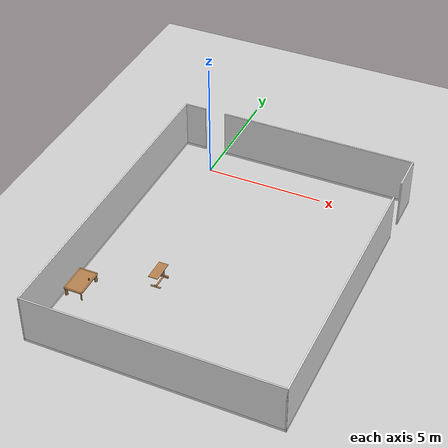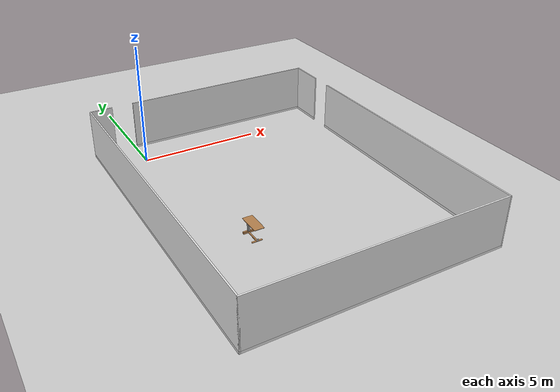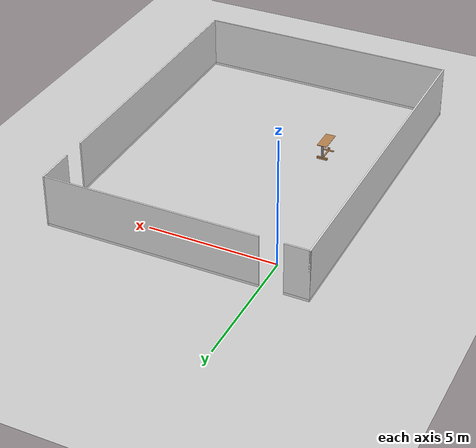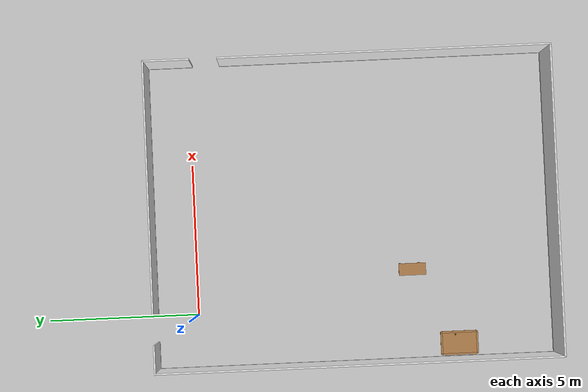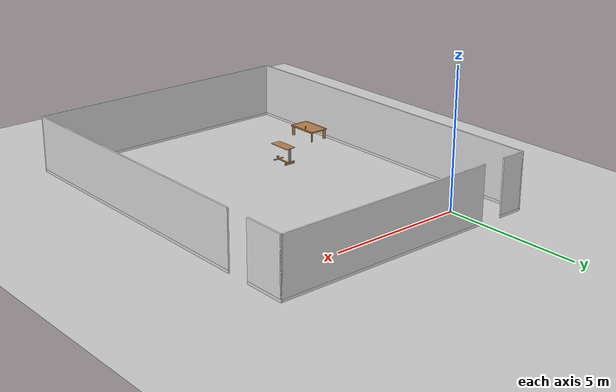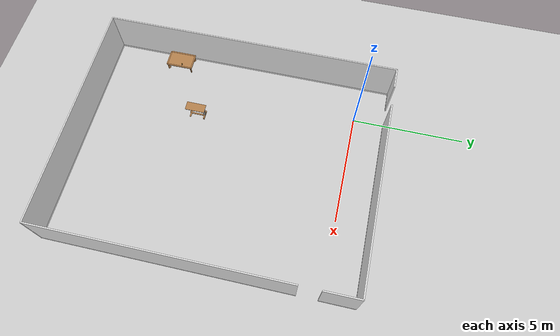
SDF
<sdf version="1.6">
 <world name="default">
  <model name="ground_plane">
   <static>1</static>
   <link name="link">
    <collision name="collision">
     <geometry><plane><normal>0 0 1</normal><size>100 100</size></plane></geometry>
     <surface><friction><ode><mu>100</mu><mu2>50</mu2></ode></friction></surface>
    </collision>
    <visual name="visual">
     <cast_shadows>0</cast_shadows>
     <geometry><plane><normal>0 0 1</normal><size>100 100</size></plane></geometry>
     <material>
      <script><uri>file://media/materials/scripts/gazebo.material</uri><name>Gazebo/Grey</name></script>
     </material>
    </visual>
   </link>
  </model>
  <model name="full_outside_wall">
   <link name="link">
    <inertial>
     <mass>50</mass>
     <inertia><ixx>1</ixx><ixy>0</ixy><ixz>0</ixz><iyy>1</iyy><iyz>0</iyz><izz>1</izz></inertia>
    </inertial>
    <visual name="x00_13y00_bottom_frame">
     <pose>5.0375 -0.0275 0.05 0 -0 0</pose>
     <geometry><box><size>10.185 0.055 0.1</size></box></geometry>
     <material>
      <script><uri>model://base_materials/color/scripts</uri><name>hsr_color/white</name></script>
     </material>
    </visual>
    <collision name="x00_13y00_collision_bottom_frame">
     <pose>5.0375 -0.0275 0.05 0 -0 0</pose>
     <geometry><box><size>10.185 0.055 0.1</size></box></geometry>
    </collision>
    <visual name="wall_x00_13y00">
     <pose>5.0375 -0.0275 1.095 0 -0 0</pose>
     <geometry><box><size>10.185 0.055 1.99</size></box></geometry>
     <material>
      <script>
       <uri>model://base_materials/wall/scripts</uri>
       <uri>model://base_materials/wall/textures</uri>
       <name>wall/white_noise</name>
      </script>
     </material>
    </visual>
    <collision name="wall_x00_13y00">
     <pose>5.0375 -0.002 1.095 0 -0 0</pose>
     <geometry><box><size>10.08 0.055 1.99</size></box></geometry>
    </collision>
    <visual name="x00y00_15_bottom_frame">
     <pose>-0.0275 6.59 0.05 0 -0 0</pose>
     <geometry><box><size>0.055 13.29 0.1</size></box></geometry>
     <material>
      <script><uri>model://base_materials/color/scripts</uri><name>hsr_color/white</name></script>
     </material>
    </visual>
    <collision name="x00y00_15_collision_bottom_frame">
     <pose>-0.0275 6.59 0.05 0 -0 0</pose>
     <geometry><box><size>0.055 13.29 0.1</size></box></geometry>
    </collision>
    <visual name="wall_x00y00_15">
     <pose>-0.0275 6.59 1.095 0 -0 0</pose>
     <geometry><box><size>0.055 13.29 1.99</size></box></geometry>
     <material>
      <script>
       <uri>model://base_materials/wall/scripts</uri>
       <uri>model://base_materials/wall/textures</uri>
       <name>wall/white_noise</name>
      </script>
     </material>
    </visual>
    <collision name="wall_x00y00_x00y15">
     <pose>-0.002 6.59 1.095 0 -0 0</pose>
     <geometry><box><size>0.002 13.29 1.99</size></box></geometry>
    </collision>
    <visual name="x13y00_12_bottom_frame">
     <pose>10.1025 5.3725 0.05 0 -0 0</pose>
     <geometry><box><size>0.055 10.855 0.1</size></box></geometry>
     <material>
      <script><uri>model://base_materials/color/scripts</uri><name>hsr_color/white</name></script>
     </material>
    </visual>
    <collision name="x13y00_12_collision_bottom_frame">
     <pose>10.1025 5.3725 0.05 0 -0 0</pose>
     <geometry><box><size>0.055 10.855 0.1</size></box></geometry>
    </collision>
    <visual name="wall_x13y00_12">
     <pose>10.1025 5.3725 1.095 0 -0 0</pose>
     <geometry><box><size>0.055 10.855 1.99</size></box></geometry>
     <material>
      <script>
       <uri>model://base_materials/wall/scripts</uri>
       <uri>model://base_materials/wall/textures</uri>
       <name>wall/white_noise</name>
      </script>
     </material>
    </visual>
    <collision name="wall_x13y00_12">
     <pose>10.1025 5.3725 1.095 0 -0 0</pose>
     <geometry><box><size>0.055 10.855 1.99</size></box></geometry>
    </collision>
    <visual name="x13y14_16_bottom_frame">
     <pose>10.1025 12.4675 0.05 0 -0 0</pose>
     <geometry><box><size>0.055 1.535 0.1</size></box></geometry>
     <material>
      <script><uri>model://base_materials/color/scripts</uri><name>hsr_color/white</name></script>
     </material>
    </visual>
    <collision name="x13y14_16_collision_bottom_frame">
     <pose>10.1025 12.4675 0.05 0 -0 0</pose>
     <geometry><box><size>0.055 1.535 0.1</size></box></geometry>
    </collision>
    <visual name="wall_x13y14_x13y16">
     <pose>10.1025 12.4675 1.095 0 -0 0</pose>
     <geometry><box><size>0.055 1.535 1.99</size></box></geometry>
     <material>
      <script>
       <uri>model://base_materials/wall/scripts</uri>
       <uri>model://base_materials/wall/textures</uri>
       <name>wall/white_noise</name>
      </script>
     </material>
    </visual>
    <collision name="wall_x13y14_x13y16">
     <pose>10.1025 12.4675 1.095 0 -0 0</pose>
     <geometry><box><size>0.055 1.535 1.99</size></box></geometry>
    </collision>
    <visual name="x00_01y16_bottom_frame">
     <pose>0.4225 13.2075 0.05 0 -0 0</pose>
     <geometry><box><size>0.955 0.055 0.1</size></box></geometry>
     <material>
      <script><uri>model://base_materials/color/scripts</uri><name>hsr_color/white</name></script>
     </material>
    </visual>
    <collision name="x00_01y16_collision_bottom_frame">
     <pose>0.4225 13.2075 0.05 0 -0 0</pose>
     <geometry><box><size>0.955 0.055 0.1</size></box></geometry>
    </collision>
    <visual name="wall_x00_01y16">
     <pose>0.4225 13.2075 1.095 0 -0 0</pose>
     <geometry><box><size>0.955 0.055 1.99</size></box></geometry>
     <material>
      <script>
       <uri>model://base_materials/wall/scripts</uri>
       <uri>model://base_materials/wall/textures</uri>
       <name>wall/white_noise</name>
      </script>
     </material>
    </visual>
    <collision name="wall_x00_x01y16">
     <pose>0.4225 13.2075 1.095 0 -0 0</pose>
     <geometry><box><size>0.955 0.055 1.99</size></box></geometry>
    </collision>
    <visual name="x03_13y16_bottom_frame">
     <pose>5.965 13.2075 0.05 0 -0 0</pose>
     <geometry><box><size>8.33 0.05 0.1</size></box></geometry>
     <material>
      <script><uri>model://base_materials/color/scripts</uri><name>hsr_color/white</name></script>
     </material>
    </visual>
    <collision name="x03_13y16_collision_bottom_frame">
     <pose>5.965 13.2075 0.05 0 -0 0</pose>
     <geometry><box><size>8.33 0.05 0.1</size></box></geometry>
    </collision>
    <visual name="wall_x03_13y16">
     <pose>5.965 13.2075 1.095 0 -0 0</pose>
     <geometry><box><size>8.33 0.055 1.99</size></box></geometry>
     <material>
      <script>
       <uri>model://base_materials/wall/scripts</uri>
       <uri>model://base_materials/wall/textures</uri>
       <name>wall/white_noise</name>
      </script>
     </material>
    </visual>
    <collision name="wall_x03_13y16">
     <pose>5.965 13.2075 1.095 0 -0 0</pose>
     <geometry><box><size>8.33 0.055 1.99</size></box></geometry>
    </collision>
    <velocity_decay><linear>0</linear><angular>0</angular></velocity_decay>
   </link>
   <static>1</static>
   <pose>-1.74055 -11.8334 0 0 -0 0</pose>
  </model>
  <model name="bed_table">
   <link name="link">
    <inertial>
     <pose>0 0.449 0.001 0 -0 0</pose>
     <mass>10</mass>
     <inertia><ixx>1</ixx><ixy>0</ixy><ixz>0</ixz><iyy>1</iyy><iyz>0</iyz><izz>1</izz></inertia>
    </inertial>
    <visual name="top_board">
     <pose>0 0.449 0.625 0 -0 0</pose>
     <geometry><box><size>0.398 0.898 0.02</size></box></geometry>
     <material>
      <script><uri>model://base_materials/wood/scripts/wood.material</uri><name>base_materials/wood</name></script>
     </material>
    </visual>
    <collision name="collision_top_board">
     <pose>0 0.449 0.625 0 -0 0</pose>
     <geometry><box><size>0.398 0.898 0.02</size></box></geometry>
    </collision>
    <visual name="right_pole">
     <pose>0 0.817 0.3515 0 -0 0</pose>
     <geometry><box><size>0.072 0.094 0.527</size></box></geometry>
     <material>
      <script><uri>model://base_materials/color/scripts</uri><name>hsr_color/grey</name></script>
     </material>
    </visual>
    <collision name="collision_right_pole">
     <pose>0 0.817 0.3515 0 -0 0</pose>
     <geometry><box><size>0.072 0.094 0.527</size></box></geometry>
    </collision>
    <visual name="right_bottom_pole">
     <pose>0 0.8225 0.044 0 -0 0</pose>
     <geometry><box><size>0.42 0.063 0.088</size></box></geometry>
     <material>
      <script><uri>model://base_materials/wood/scripts/wood.material</uri><name>base_materials/wood</name></script>
     </material>
    </visual>
    <collision name="collision_right_bottom_pole">
     <pose>0 0.8225 0.044 0 -0 0</pose>
     <geometry><box><size>0.42 0.063 0.088</size></box></geometry>
    </collision>
    <visual name="bottom_center_pole">
     <pose>0 0.502 0.03 0 -0 0</pose>
     <geometry><box><size>0.06 0.578 0.03</size></box></geometry>
     <material>
      <script><uri>model://base_materials/wood/scripts/wood.material</uri><name>base_materials/wood</name></script>
     </material>
    </visual>
    <collision name="collision_bottom_center_pole">
     <pose>0 0.502 0.03 0 -0 0</pose>
     <geometry><box><size>0.06 0.578 0.03</size></box></geometry>
    </collision>
    <visual name="left_bottom_pole">
     <pose>0 0.18 0.0325 0 -0 0</pose>
     <geometry><box><size>0.418 0.066 0.025</size></box></geometry>
     <material>
      <script><uri>model://base_materials/wood/scripts/wood.material</uri><name>base_materials/wood</name></script>
     </material>
    </visual>
    <collision name="collision_left_bottom_pole">
     <pose>0 0.18 0.0325 0 -0 0</pose>
     <geometry><box><size>0.418 0.066 0.025</size></box></geometry>
    </collision>
    <visual name="marker_0010">
     <pose>0 0.14 0.093 0 -0 0</pose>
     <geometry><box><size>0.09 0.001 0.09</size></box></geometry>
     <material>
      <script>
       <uri>model://bed_table/marker/0010/scripts</uri>
       <uri>model://bed_table/marker/0010/textures</uri>
       <name>Marker/0010</name>
      </script>
     </material>
    </visual>
    <collision name="collision_marker_0010">
     <pose>0 0.14 0.093 0 -0 0</pose>
     <geometry><box><size>0.09 0.001 0.09</size></box></geometry>
    </collision>
    <visual name="marker_0010_back_plate">
     <pose>0 0.146 0.093 0 -0 0</pose>
     <geometry><box><size>0.09 0.01 0.09</size></box></geometry>
     <material>
      <script><uri>model://base_materials/wood/scripts/wood.material</uri><name>base_materials/wood</name></script>
     </material>
    </visual>
    <collision name="collision_marker_0010_back_plate">
     <pose>0 0.146 0.093 0 -0 0</pose>
     <geometry><box><size>0.09 0.01 0.09</size></box></geometry>
    </collision>
    <velocity_decay><linear>0</linear><angular>0</angular></velocity_decay>
   </link>
   <static>1</static>
   <pose>1.23263 -7.6297 0 0 -0 0</pose>
  </model>
  <model name="kitchen_lowtable">
   <link name="link">
    <inertial>
     <mass>10</mass>
     <inertia><ixx>1</ixx><ixy>0</ixy><ixz>0</ixz><iyy>1</iyy><iyz>0</iyz><izz>1</izz></inertia>
    </inertial>
    <visual name="center_board">
     <pose>0 0 0.38 0 -0 0</pose>
     <geometry><box><size>0.68 1.13 0.04</size></box></geometry>
     <material>
      <script><uri>model://base_materials/wood/scripts/wood.material</uri><name>base_materials/wood</name></script>
     </material>
    </visual>
    <collision name="collision_center_board">
     <pose>0 0 0.38 0 -0 0</pose>
     <geometry><box><size>0.68 1.13 0.04</size></box></geometry>
    </collision>
    <visual name="front_board">
     <pose>0.37 0 0.38 0 -0 0</pose>
     <geometry><box><size>0.06 1.13 0.04</size></box></geometry>
     <material>
      <script><uri>model://base_materials/wood/scripts/wood.material</uri><name>base_materials/wood</name></script>
     </material>
    </visual>
    <collision name="collision_front_board">
     <pose>0.37 0 0.38 0 -0 0</pose>
     <geometry><box><size>0.06 1.13 0.04</size></box></geometry>
    </collision>
    <visual name="back_board">
     <pose>-0.37 0 0.38 0 -0 0</pose>
     <geometry><box><size>0.06 1.13 0.04</size></box></geometry>
     <material>
      <script><uri>model://base_materials/wood/scripts/wood.material</uri><name>base_materials/wood</name></script>
     </material>
    </visual>
    <collision name="collision_back_board">
     <pose>-0.37 0 0.38 0 -0 0</pose>
     <geometry><box><size>0.06 1.13 0.04</size></box></geometry>
    </collision>
    <visual name="right_board">
     <pose>0 0.595 0.38 0 -0 0</pose>
     <geometry><box><size>0.68 0.06 0.04</size></box></geometry>
     <material>
      <script><uri>model://base_materials/wood/scripts/wood.material</uri><name>base_materials/wood</name></script>
     </material>
    </visual>
    <collision name="collision_right_board">
     <pose>0 0.595 0.38 0 -0 0</pose>
     <geometry><box><size>0.68 0.06 0.04</size></box></geometry>
    </collision>
    <visual name="left_board">
     <pose>0 -0.595 0.38 0 -0 0</pose>
     <geometry><box><size>0.68 0.06 0.04</size></box></geometry>
     <material>
      <script><uri>model://base_materials/wood/scripts/wood.material</uri><name>base_materials/wood</name></script>
     </material>
    </visual>
    <collision name="collision_left_board">
     <pose>0 -0.595 0.38 0 -0 0</pose>
     <geometry><box><size>0.68 0.06 0.04</size></box></geometry>
    </collision>
    <visual name="front_right_corner_board">
     <pose>0.34 0.565 0.38 0 -0 0</pose>
     <geometry><cylinder><radius>0.06</radius><length>0.039</length></cylinder></geometry>
     <material>
      <script><uri>model://base_materials/wood/scripts/wood.material</uri><name>base_materials/wood</name></script>
     </material>
    </visual>
    <collision name="collision_front_right_corner_board">
     <pose>0.34 0.565 0.38 0 -0 0</pose>
     <geometry><cylinder><radius>0.06</radius><length>0.039</length></cylinder></geometry>
    </collision>
    <visual name="front_left_corner_board">
     <pose>0.34 -0.565 0.38 0 -0 0</pose>
     <geometry><cylinder><radius>0.06</radius><length>0.039</length></cylinder></geometry>
     <material>
      <script><uri>model://base_materials/wood/scripts/wood.material</uri><name>base_materials/wood</name></script>
     </material>
    </visual>
    <collision name="collision_front_left_corner_board">
     <pose>0.34 -0.565 0.38 0 -0 0</pose>
     <geometry><cylinder><radius>0.06</radius><length>0.039</length></cylinder></geometry>
    </collision>
    <visual name="front_back_right_corner_board">
     <pose>-0.34 0.565 0.38 0 -0 0</pose>
     <geometry><cylinder><radius>0.06</radius><length>0.039</length></cylinder></geometry>
     <material>
      <script><uri>model://base_materials/wood/scripts/wood.material</uri><name>base_materials/wood</name></script>
     </material>
    </visual>
    <collision name="collision_back_right_corner_board">
     <pose>-0.34 0.565 0.38 0 -0 0</pose>
     <geometry><cylinder><radius>0.06</radius><length>0.039</length></cylinder></geometry>
    </collision>
    <visual name="front_back_left_corner_board">
     <pose>-0.34 -0.565 0.38 0 -0 0</pose>
     <geometry><cylinder><radius>0.06</radius><length>0.039</length></cylinder></geometry>
     <material>
      <script><uri>model://base_materials/wood/scripts/wood.material</uri><name>base_materials/wood</name></script>
     </material>
    </visual>
    <collision name="collision_back_left_corner_board">
     <pose>-0.34 -0.565 0.38 0 -0 0</pose>
     <geometry><cylinder><radius>0.06</radius><length>0.039</length></cylinder></geometry>
    </collision>
    <visual name="front_left_corner_frame1">
     <pose>0.345858 -0.57086 0.18 0 -0 0</pose>
     <geometry><cylinder><radius>0.02</radius><length>0.36</length></cylinder></geometry>
     <material>
      <script><uri>model://base_materials/wood/scripts/wood.material</uri><name>base_materials/wood</name></script>
     </material>
    </visual>
    <collision name="collision_front_left_corner_frame1">
     <pose>0.345858 -0.57086 0.18 0 -0 0</pose>
     <geometry><cylinder><radius>0.02</radius><length>0.36</length></cylinder></geometry>
    </collision>
    <visual name="front_left_corner_frame2">
     <pose>0.317574 -0.54257 0.18 0 -0 0.7854</pose>
     <geometry><box><size>0.04 0.08 0.36</size></box></geometry>
     <material>
      <script><uri>model://base_materials/wood/scripts/wood.material</uri><name>base_materials/wood</name></script>
     </material>
    </visual>
    <collision name="collision_front_left_corner_frame2">
     <pose>0.317574 -0.54257 0.18 0 -0 0.7854</pose>
     <geometry><box><size>0.04 0.08 0.36</size></box></geometry>
    </collision>
    <visual name="front_left_corner_frame3">
     <pose>0.289289 -0.51429 0.18 0 -0 0</pose>
     <geometry><cylinder><radius>0.02</radius><length>0.36</length></cylinder></geometry>
     <material>
      <script><uri>model://base_materials/wood/scripts/wood.material</uri><name>base_materials/wood</name></script>
     </material>
    </visual>
    <collision name="collision_front_left_corner_frame3">
     <pose>0.289289 -0.51429 0.18 0 -0 0</pose>
     <geometry><cylinder><radius>0.02</radius><length>0.36</length></cylinder></geometry>
    </collision>
    <visual name="front_right_corner_frame1">
     <pose>0.345858 0.57086 0.18 0 -0 0</pose>
     <geometry><cylinder><radius>0.02</radius><length>0.36</length></cylinder></geometry>
     <material>
      <script><uri>model://base_materials/wood/scripts/wood.material</uri><name>base_materials/wood</name></script>
     </material>
    </visual>
    <collision name="collision_front_right_corner_frame1">
     <pose>0.345858 0.57086 0.18 0 -0 0</pose>
     <geometry><cylinder><radius>0.02</radius><length>0.36</length></cylinder></geometry>
    </collision>
    <visual name="front_right_corner_frame2">
     <pose>0.317574 0.54257 0.18 0 0 -0.7854</pose>
     <geometry><box><size>0.04 0.08 0.36</size></box></geometry>
     <material>
      <script><uri>model://base_materials/wood/scripts/wood.material</uri><name>base_materials/wood</name></script>
     </material>
    </visual>
    <collision name="collision_front_right_corner_frame2">
     <pose>0.317574 0.54257 0.18 0 0 -0.7854</pose>
     <geometry><box><size>0.04 0.08 0.36</size></box></geometry>
    </collision>
    <visual name="front_right_corner_frame3">
     <pose>0.289289 0.51429 0.18 0 -0 0</pose>
     <geometry><cylinder><radius>0.02</radius><length>0.36</length></cylinder></geometry>
     <material>
      <script><uri>model://base_materials/wood/scripts/wood.material</uri><name>base_materials/wood</name></script>
     </material>
    </visual>
    <collision name="collision_front_right_corner_frame3">
     <pose>0.289289 0.51429 0.18 0 -0 0</pose>
     <geometry><cylinder><radius>0.02</radius><length>0.36</length></cylinder></geometry>
    </collision>
    <visual name="back_left_corner_frame1">
     <pose>-0.345858 -0.57086 0.18 0 -0 0</pose>
     <geometry><cylinder><radius>0.02</radius><length>0.36</length></cylinder></geometry>
     <material>
      <script><uri>model://base_materials/wood/scripts/wood.material</uri><name>base_materials/wood</name></script>
     </material>
    </visual>
    <collision name="collision_back_left_corner_frame1">
     <pose>-0.345858 -0.57086 0.18 0 -0 0</pose>
     <geometry><cylinder><radius>0.02</radius><length>0.36</length></cylinder></geometry>
    </collision>
    <visual name="back_left_corner_frame2">
     <pose>-0.317574 -0.54257 0.18 0 0 -0.7854</pose>
     <geometry><box><size>0.04 0.08 0.36</size></box></geometry>
     <material>
      <script><uri>model://base_materials/wood/scripts/wood.material</uri><name>base_materials/wood</name></script>
     </material>
    </visual>
    <collision name="collision_back_left_corner_frame2">
     <pose>-0.317574 -0.54257 0.18 0 0 -0.7854</pose>
     <geometry><box><size>0.04 0.08 0.36</size></box></geometry>
    </collision>
    <visual name="back_left_corner_frame3">
     <pose>-0.289289 -0.51429 0.18 0 -0 0</pose>
     <geometry><cylinder><radius>0.02</radius><length>0.36</length></cylinder></geometry>
     <material>
      <script><uri>model://base_materials/wood/scripts/wood.material</uri><name>base_materials/wood</name></script>
     </material>
    </visual>
    <collision name="collision_back_left_corner_frame3">
     <pose>-0.289289 -0.51429 0.18 0 -0 0</pose>
     <geometry><cylinder><radius>0.02</radius><length>0.36</length></cylinder></geometry>
    </collision>
    <visual name="back_right_corner_frame1">
     <pose>-0.345858 0.57086 0.18 0 -0 0</pose>
     <geometry><cylinder><radius>0.02</radius><length>0.36</length></cylinder></geometry>
     <material>
      <script><uri>model://base_materials/wood/scripts/wood.material</uri><name>base_materials/wood</name></script>
     </material>
    </visual>
    <collision name="collision_back_right_corner_frame1">
     <pose>-0.345858 0.57086 0.18 0 -0 0</pose>
     <geometry><cylinder><radius>0.02</radius><length>0.36</length></cylinder></geometry>
    </collision>
    <visual name="back_right_corner_frame2">
     <pose>-0.317574 0.54257 0.18 0 -0 0.7854</pose>
     <geometry><box><size>0.04 0.08 0.36</size></box></geometry>
     <material>
      <script><uri>model://base_materials/wood/scripts/wood.material</uri><name>base_materials/wood</name></script>
     </material>
    </visual>
    <collision name="collision_back_right_corner_frame2">
     <pose>-0.317574 0.54257 0.18 0 -0 0.7854</pose>
     <geometry><box><size>0.04 0.08 0.36</size></box></geometry>
    </collision>
    <visual name="back_right_corner_frame3">
     <pose>-0.289289 0.51429 0.18 0 -0 0</pose>
     <geometry><cylinder><radius>0.02</radius><length>0.36</length></cylinder></geometry>
     <material>
      <script><uri>model://base_materials/wood/scripts/wood.material</uri><name>base_materials/wood</name></script>
     </material>
    </visual>
    <collision name="collision_back_right_corner_frame3">
     <pose>-0.289289 0.51429 0.18 0 -0 0</pose>
     <geometry><cylinder><radius>0.02</radius><length>0.36</length></cylinder></geometry>
    </collision>
    <velocity_decay><linear>0</linear><angular>0</angular></velocity_decay>
   </link>
   <static>1</static>
   <pose>-1.29071 -8.66423 0 0 -0 0</pose>
  </model>
  <model name="bottle_clone_2">
   <link name="link">
    <inertial>
     <mass>0.05</mass>
     <inertia><ixx>0.00058</ixx><ixy>0</ixy><ixz>0</ixz><iyy>0.00058</iyy><iyz>0</iyz><izz>0.00016</izz></inertia>
    </inertial>
    <visual name="top">
     <pose>0 0 0.0555 0 -0 0</pose>
     <geometry><cylinder><radius>0.019</radius><length>0.016</length></cylinder></geometry>
     <material>
      <ambient>1 0.647 0 1</ambient>
      <diffuse>0.5 0.3235 0 1</diffuse>
      <specular>0.1 0.1 0.1 1</specular>
      <emissive>0 0 0 0</emissive>
     </material>
    </visual>
    <collision name="collision_top">
     <pose>0 0 0.0555 0 -0 0</pose>
     <geometry><cylinder><radius>0.019</radius><length>0.016</length></cylinder></geometry>
     <surface>
      <bounce><restitution_coefficient>0.2</restitution_coefficient><threshold>0</threshold></bounce>
      <contact><ode><kp>10000</kp><max_vel>10</max_vel></ode></contact>
     </surface>
    </collision>
    <visual name="bottom">
     <geometry><cylinder><radius>0.0245</radius><length>0.095</length></cylinder></geometry>
     <material>
      <ambient>1 0.7 0.3 1</ambient>
      <diffuse>0.5 0.3235 0 1</diffuse>
      <specular>0.1 0.1 0.1 1</specular>
      <emissive>0 0 0 0</emissive>
     </material>
    </visual>
    <collision name="collision_bottom">
     <geometry><cylinder><radius>0.0245</radius><length>0.095</length></cylinder></geometry>
     <surface>
      <bounce><restitution_coefficient>0.2</restitution_coefficient><threshold>0</threshold></bounce>
      <contact><ode><kp>100000</kp><max_vel>10</max_vel></ode></contact>
     </surface>
    </collision>
    <velocity_decay><linear>0</linear><angular>0</angular></velocity_decay>
    <visual name="marker_4000">
     <pose>0.0245 0 0 0 1.57 3.141</pose>
     <geometry><box><size>0.045 0.045 0.0001</size></box></geometry>
     <material>
      <script>
       <uri>model://marker/4000/scripts</uri>
       <uri>model://marker/4000/textures</uri>
       <name>Marker/4000</name>
      </script>
     </material>
    </visual>
   </link>
   <static>0</static>
   <pose>-1.00971 -8.53332 0.4475 -6e-06 -6e-06 0.03372</pose>
  </model>
 </world>
</sdf>
